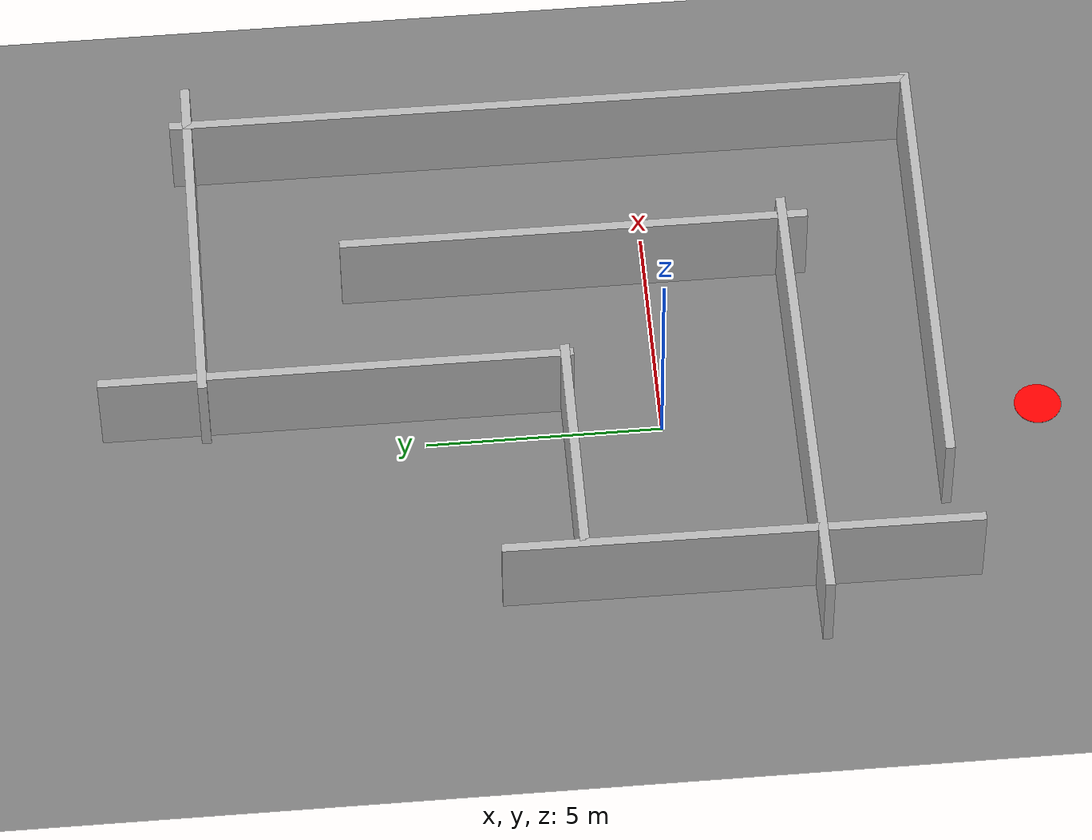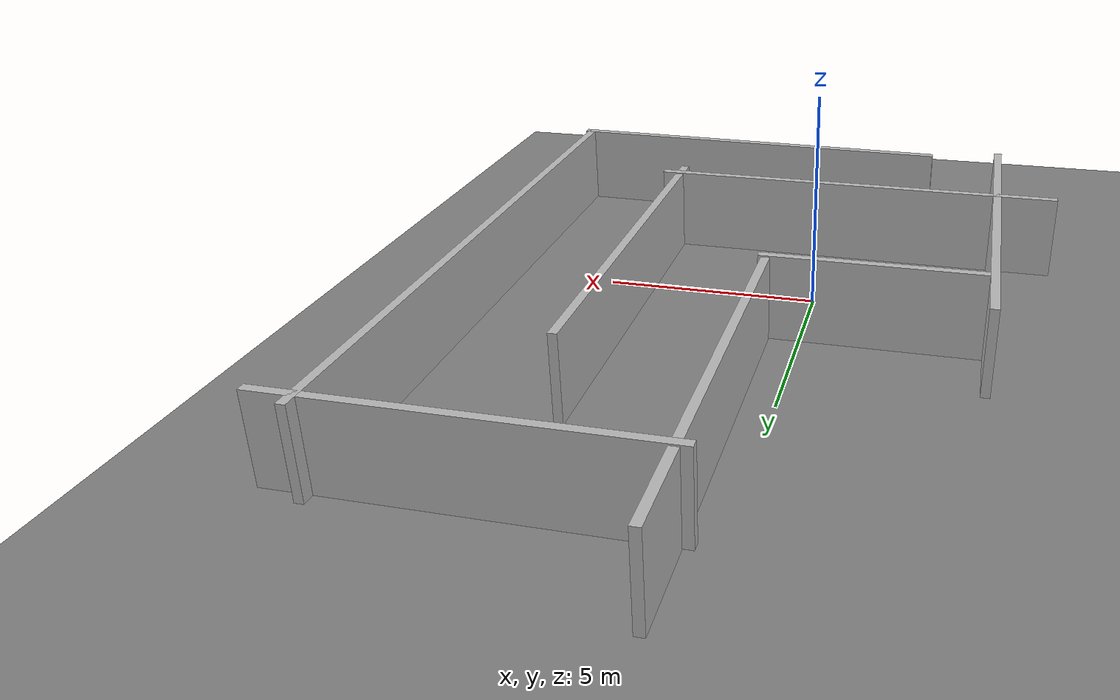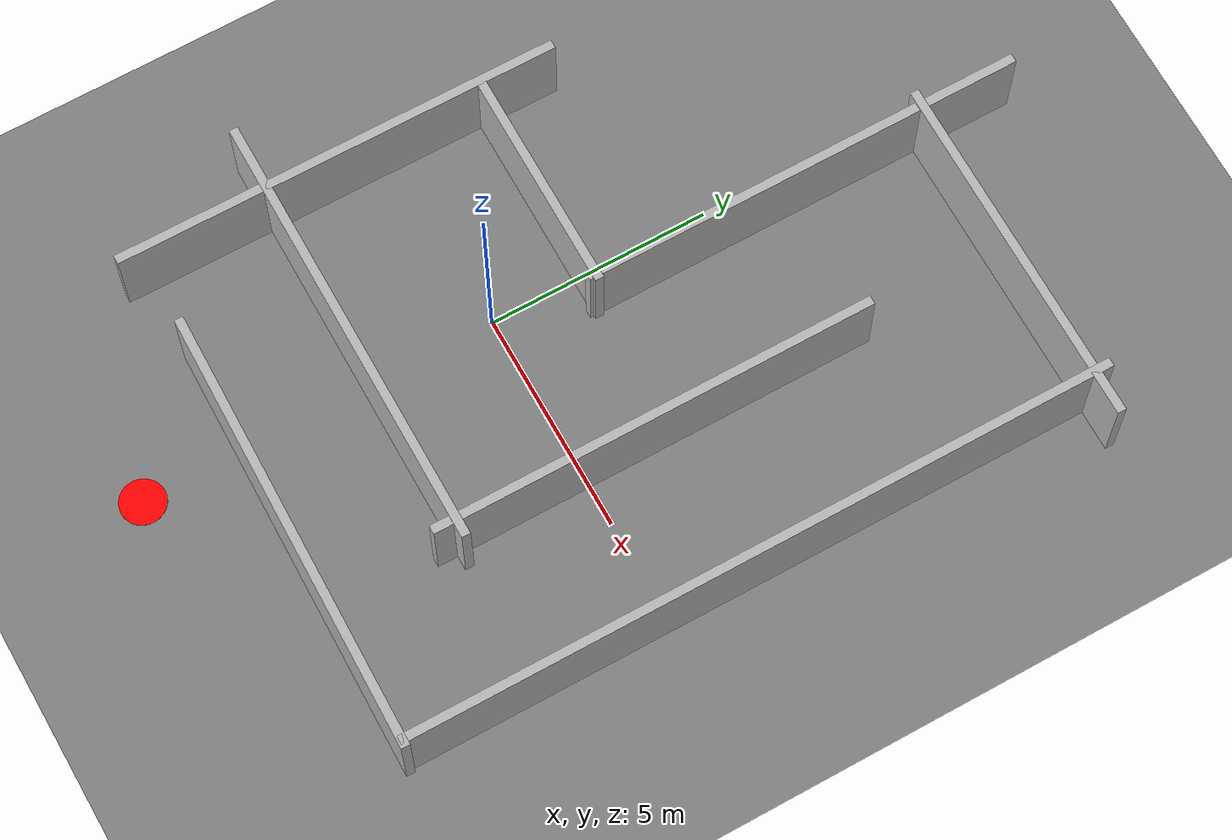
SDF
<sdf version='1.9'>
  <world name='u_corridor'>
    <gravity>0 0 -9.8</gravity>
    <magnetic_field>6e-06 2.3e-05 -4.2e-05</magnetic_field>
    <atmosphere type='adiabatic'/>
    <physics type='dart'>
      <max_step_size>0.0050000000000000001</max_step_size>
      <real_time_factor>0</real_time_factor>
      <real_time_update_rate>0</real_time_update_rate>
      <solver>
        <iterations>50</iterations>
      </solver>
    </physics>
    <plugin name='ignition::gazebo::systems::Physics' filename='ignition-gazebo-physics-system'/>
    <plugin name='ignition::gazebo::systems::Sensors' filename='ignition-gazebo-sensors-system'>
      <render_engine>ogre</render_engine>
    </plugin>
    <plugin name='ignition::gazebo::systems::SceneBroadcaster' filename='ignition-gazebo-scene-broadcaster-system'/>
    <plugin name='ignition::gazebo::systems::UserCommands' filename='ignition-gazebo-user-commands-system'/>
    <plugin name='gz::sim::systems::Imu' filename='gz-sim-imu-system'/>
    <scene>
      <ambient>0.4 0.4 0.4 1</ambient>
      <background>0.7 0.7 0.7 1</background>
      <shadows>true</shadows>
    </scene>
    <model name='ground_plane'>
      <static>true</static>
      <link name='link'>
        <collision name='collision'>
          <geometry>
            <plane>
              <normal>0 0 1</normal>
              <size>50 50</size>
            </plane>
          </geometry>
          <surface>
            <friction>
              <ode/>
            </friction>
            <bounce/>
            <contact/>
          </surface>
        </collision>
        <visual name='visual'>
          <geometry>
            <plane>
              <normal>0 0 1</normal>
              <size>50 50</size>
            </plane>
          </geometry>
          <material>
            <ambient>0.5 0.5 0.5 1</ambient>
            <diffuse>0.5 0.5 0.5 1</diffuse>
          </material>
        </visual>
        <pose>0 0 0 0 -0 0</pose>
        <inertial>
          <pose>0 0 0 0 -0 0</pose>
          <mass>1</mass>
          <inertia>
            <ixx>1</ixx>
            <ixy>0</ixy>
            <ixz>0</ixz>
            <iyy>1</iyy>
            <iyz>0</iyz>
            <izz>1</izz>
          </inertia>
        </inertial>
        <enable_wind>false</enable_wind>
      </link>
      <pose>0 0 0 0 -0 0</pose>
      <self_collide>false</self_collide>
    </model>

    <model name="red_circle">
    <static>true</static>
    <link name="link">
        <visual name="circle_visual">
        <geometry>
            <cylinder>
            <radius>0.5</radius>
            <length>0.01</length>
            </cylinder>
        </geometry>
        <material>
            <ambient>1 0 0 1</ambient>
            <diffuse>1 0 0 1</diffuse>
        </material>
        <pose>0 -8.0 0.003 0 0 0</pose>
        </visual>
    </link>
    </model>

    <model name='wall_bottom_left'>
      <static>true</static>
      <pose>-0.564607 -2.9117 1 0 -0 0</pose>
      <link name='link'>
        <collision name='collision'>
          <geometry>
            <box>
              <size>10 0.2 2</size>
            </box>
          </geometry>
          <surface>
            <friction>
              <ode/>
            </friction>
            <bounce/>
            <contact/>
          </surface>
        </collision>
        <visual name='visual'>
          <geometry>
            <box>
              <size>10 0.2 2</size>
            </box>
          </geometry>
        </visual>
        <pose>0 0 0 0 -0 0</pose>
        <inertial>
          <pose>0 0 0 0 -0 0</pose>
          <mass>1</mass>
          <inertia>
            <ixx>1</ixx>
            <ixy>0</ixy>
            <ixz>0</ixz>
            <iyy>1</iyy>
            <iyz>0</iyz>
            <izz>1</izz>
          </inertia>
        </inertial>
        <enable_wind>false</enable_wind>
      </link>
      <self_collide>false</self_collide>
    </model>
    <model name='wall_bottom_right'>
      <static>true</static>
      <pose>-1.54389 2 1 0 -0 0</pose>
      <link name='link'>
        <collision name='collision'>
          <geometry>
            <box>
              <size>5 0.2 2</size>
            </box>
          </geometry>
          <surface>
            <friction>
              <ode/>
            </friction>
            <bounce/>
            <contact/>
          </surface>
        </collision>
        <visual name='visual'>
          <geometry>
            <box>
              <size>5 0.2 2</size>
            </box>
          </geometry>
        </visual>
        <pose>0 0 0 0 -0 0</pose>
        <inertial>
          <pose>0 0 0 0 -0 0</pose>
          <mass>1</mass>
          <inertia>
            <ixx>1</ixx>
            <ixy>0</ixy>
            <ixz>0</ixz>
            <iyy>1</iyy>
            <iyz>0</iyz>
            <izz>1</izz>
          </inertia>
        </inertial>
        <enable_wind>false</enable_wind>
      </link>
      <self_collide>false</self_collide>
    </model>
    <model name='wall_left_inner'>
      <static>true</static>
      <pose>2.61779 -5.84816 1 0 0 -0.018096</pose>
      <link name='link'>
        <collision name='collision'>
          <geometry>
            <box>
              <size>10 0.2 2</size>
            </box>
          </geometry>
          <surface>
            <friction>
              <ode/>
            </friction>
            <bounce/>
            <contact/>
          </surface>
        </collision>
        <visual name='visual'>
          <geometry>
            <box>
              <size>10 0.2 2</size>
            </box>
          </geometry>
        </visual>
        <pose>0 0 0 0 -0 0</pose>
        <inertial>
          <pose>0 0 0 0 -0 0</pose>
          <mass>1</mass>
          <inertia>
            <ixx>1</ixx>
            <ixy>0</ixy>
            <ixz>0</ixz>
            <iyy>1</iyy>
            <iyz>0</iyz>
            <izz>1</izz>
          </inertia>
        </inertial>
        <enable_wind>false</enable_wind>
      </link>
      <self_collide>false</self_collide>
    </model>
    <model name='wall_top_left'>
      <static>true</static>
      <pose>4.46347 9.63161 1 0 -0 0</pose>
      <link name='link'>
        <collision name='collision'>
          <geometry>
            <box>
              <size>8 0.2 2</size>
            </box>
          </geometry>
          <surface>
            <friction>
              <ode/>
            </friction>
            <bounce/>
            <contact/>
          </surface>
        </collision>
        <visual name='visual'>
          <geometry>
            <box>
              <size>8 0.2 2</size>
            </box>
          </geometry>
        </visual>
        <pose>0 0 0 0 -0 0</pose>
        <inertial>
          <pose>0 0 0 0 -0 0</pose>
          <mass>1</mass>
          <inertia>
            <ixx>1</ixx>
            <ixy>0</ixy>
            <ixz>0</ixz>
            <iyy>1</iyy>
            <iyz>0</iyz>
            <izz>1</izz>
          </inertia>
        </inertial>
        <enable_wind>false</enable_wind>
      </link>
      <self_collide>false</self_collide>
    </model>
    <model name='wall_top_right'>
      <static>true</static>
      <pose>7.45625 2.00943 1 0 -0 1.5695</pose>
      <link name='link'>
        <collision name='collision'>
          <geometry>
            <box>
              <size>16 0.2 2</size>
            </box>
          </geometry>
          <surface>
            <friction>
              <ode/>
            </friction>
            <bounce/>
            <contact/>
          </surface>
        </collision>
        <visual name='visual'>
          <geometry>
            <box>
              <size>16 0.2 2</size>
            </box>
          </geometry>
        </visual>
        <pose>0 0 0 0 -0 0</pose>
        <inertial>
          <pose>0 0 0 0 -0 0</pose>
          <mass>1</mass>
          <inertia>
            <ixx>1</ixx>
            <ixy>0</ixy>
            <ixz>0</ixz>
            <iyy>1</iyy>
            <iyz>0</iyz>
            <izz>1</izz>
          </inertia>
        </inertial>
        <enable_wind>false</enable_wind>
      </link>
      <self_collide>false</self_collide>
    </model>
    <model name='wall_right_outer'>
      <static>true</static>
      <pose>0.779338 6.82022 0.966417 0 -0 1.5708</pose>
      <link name='link'>
        <collision name='collision'>
          <geometry>
            <box>
              <size>10 0.2 2</size>
            </box>
          </geometry>
          <surface>
            <friction>
              <ode/>
            </friction>
            <bounce/>
            <contact/>
          </surface>
        </collision>
        <visual name='visual'>
          <geometry>
            <box>
              <size>10 0.2 2</size>
            </box>
          </geometry>
        </visual>
        <pose>0 0 0 0 -0 0</pose>
        <inertial>
          <pose>0 0 0 0 -0 0</pose>
          <mass>1</mass>
          <inertia>
            <ixx>1</ixx>
            <ixy>0</ixy>
            <ixz>0</ixz>
            <iyy>1</iyy>
            <iyz>0</iyz>
            <izz>1</izz>
          </inertia>
        </inertial>
        <enable_wind>false</enable_wind>
      </link>
      <self_collide>false</self_collide>
    </model>
    <model name='wall_right_inner'>
      <static>true</static>
      <pose>4.00003 1.54828 0.975131 0 -0 1.5708</pose>
      <link name='link'>
        <collision name='collision'>
          <geometry>
            <box>
              <size>10 0.2 2</size>
            </box>
          </geometry>
          <surface>
            <friction>
              <ode/>
            </friction>
            <bounce/>
            <contact/>
          </surface>
        </collision>
        <visual name='visual'>
          <geometry>
            <box>
              <size>10 0.2 2</size>
            </box>
          </geometry>
        </visual>
        <pose>0 0 0 0 -0 0</pose>
        <inertial>
          <pose>0 0 0 0 -0 0</pose>
          <mass>1</mass>
          <inertia>
            <ixx>1</ixx>
            <ixy>0</ixy>
            <ixz>0</ixz>
            <iyy>1</iyy>
            <iyz>0</iyz>
            <izz>1</izz>
          </inertia>
        </inertial>
        <enable_wind>false</enable_wind>
      </link>
      <self_collide>false</self_collide>
    </model>
    <model name='wall_bottom_left_1'>
      <static>true</static>
      <pose>-4.10944 -1.29036 1 0 0 -1.5751</pose>
      <link name='link'>
        <collision name='collision'>
          <geometry>
            <box>
              <size>10 0.2 2</size>
            </box>
          </geometry>
          <surface>
            <friction>
              <ode/>
            </friction>
            <bounce/>
            <contact/>
          </surface>
        </collision>
        <visual name='visual'>
          <geometry>
            <box>
              <size>10 0.2 2</size>
            </box>
          </geometry>
        </visual>
        <pose>0 0 0 0 -0 0</pose>
        <inertial>
          <pose>0 0 0 0 -0 0</pose>
          <mass>1</mass>
          <inertia>
            <ixx>1</ixx>
            <ixy>0</ixy>
            <ixz>0</ixz>
            <iyy>1</iyy>
            <iyz>0</iyz>
            <izz>1</izz>
          </inertia>
        </inertial>
        <enable_wind>false</enable_wind>
      </link>
      <self_collide>false</self_collide>
    </model>
    <light name='sun' type='directional'>
      <pose>0 0 10 0 -0 0</pose>
      <cast_shadows>true</cast_shadows>
      <intensity>1</intensity>
      <direction>-0.5 0.5 -1</direction>
      <diffuse>1 1 1 1</diffuse>
      <specular>0.1 0.1 0.1 1</specular>
      <attenuation>
        <range>10</range>
        <linear>1</linear>
        <constant>1</constant>
        <quadratic>0</quadratic>
      </attenuation>
      <spot>
        <inner_angle>0</inner_angle>
        <outer_angle>0</outer_angle>
        <falloff>0</falloff>
      </spot>
    </light>
  </world>
</sdf>
